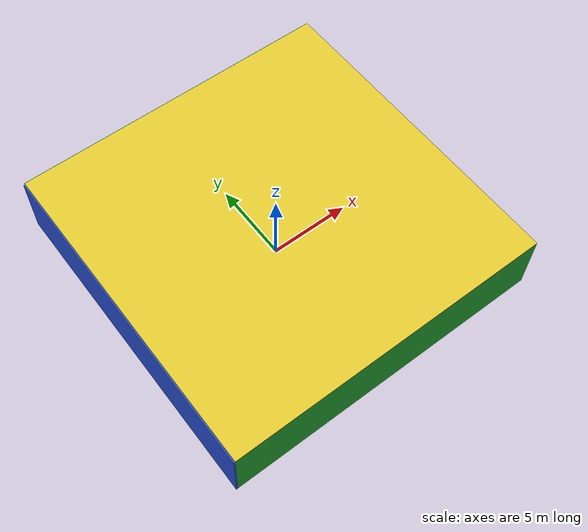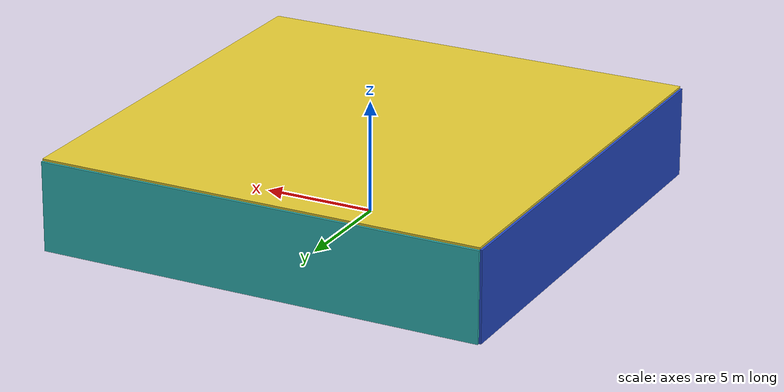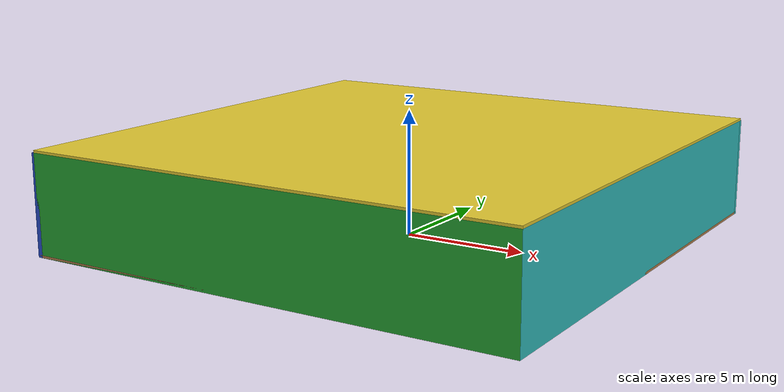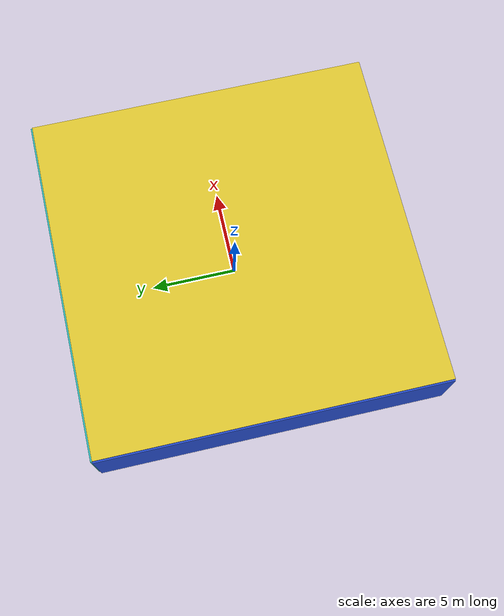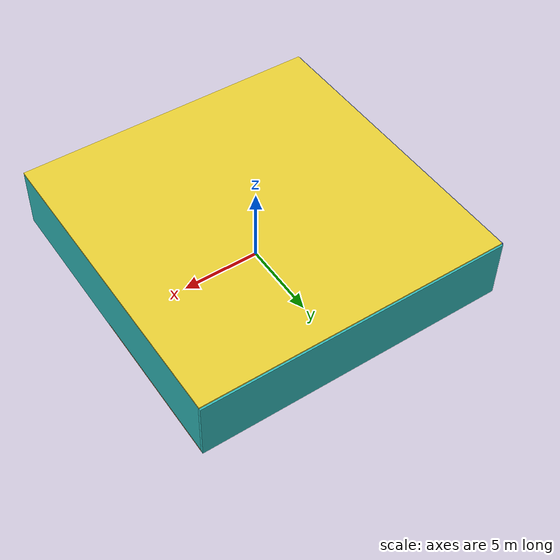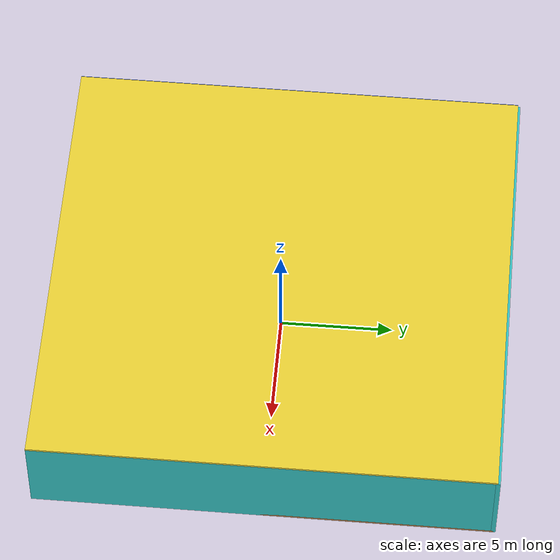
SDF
<sdf version="1.4">
 <world name="default">
  <physics type="ode">
   <max_step_size>0.001</max_step_size>
   <real_time_factor>1</real_time_factor>
   <real_time_update_rate>1000</real_time_update_rate>
   <gravity>0 0 -9.8</gravity>
  </physics>
  <scene><ambient>0.4 0.4 0.4 1</ambient><background>0.7 0.7 0.7 1</background><shadows>1</shadows></scene>
  <model name="Surrounding">
   <static>1</static>
   <link name="Ceiling">
    <collision name="Ceiling_Collision"><geometry><box><size>20 20 0.1</size></box></geometry></collision>
    <visual name="Ceiling_Visual">
     <geometry><box><size>20 20 0.1</size></box></geometry>
     <material>
      <script><uri>file://media/materials/scripts/gazebo.material</uri><name>Gazebo/ZincYellow</name></script>
     </material>
    </visual>
    <pose>0 0 4.05 0 0 0</pose>
   </link>
   <link name="Wall_South">
    <collision name="Wall_South_Collision">
     <geometry><box><size>20 0 4</size></box></geometry>
     <pose>0 0 2 0 -0 0</pose>
    </collision>
    <visual name="Wall_South_Visual">
     <pose>0 0 2 0 -0 0</pose>
     <geometry><box><size>20 0 4</size></box></geometry>
     <material>
      <script><uri>file://media/materials/scripts/gazebo.material</uri><name>Gazebo/GreenGlow</name></script>
     </material>
    </visual>
    <velocity_decay><linear>0</linear><angular>0</angular></velocity_decay>
    <pose>0 -10 0 0 -0 0</pose>
   </link>
   <link name="Wall_East">
    <collision name="Wall_21_Collision">
     <geometry><box><size>20 0 4</size></box></geometry>
     <pose>0 0 2 0 -0 0</pose>
    </collision>
    <visual name="Wall_21_Visual">
     <pose>0 0 2 0 -0 0</pose>
     <geometry><box><size>20 0 4</size></box></geometry>
     <material>
      <script><uri>file://media/materials/scripts/gazebo.material</uri><name>Gazebo/TurquoiseGlow</name></script>
     </material>
    </visual>
    <velocity_decay><linear>0</linear><angular>0</angular></velocity_decay>
    <pose>10 0 0 0 -0 1.5708</pose>
   </link>
   <link name="Wall_North">
    <collision name="Wall_22_Collision">
     <geometry><box><size>20 0.2 4</size></box></geometry>
     <pose>0 0 2 0 -0 0</pose>
    </collision>
    <visual name="Wall_22_Visual">
     <pose>0 0 2 0 -0 0</pose>
     <geometry><box><size>20 0.2 4</size></box></geometry>
     <material>
      <script><uri>file://media/materials/scripts/gazebo.material</uri><name>Gazebo/Turquoise</name></script>
     </material>
    </visual>
    <velocity_decay><linear>0</linear><angular>0</angular></velocity_decay>
    <pose>0 10 0 0 -0 0</pose>
   </link>
   <link name="Wall_West">
    <collision name="Wall_23_Collision">
     <geometry><box><size>20 0.2 4</size></box></geometry>
     <pose>0 0 2 0 -0 0</pose>
    </collision>
    <visual name="Wall_23_Visual">
     <pose>0 0 2 0 -0 0</pose>
     <geometry><box><size>20 0.2 4</size></box></geometry>
     <material>
      <script><uri>file://media/materials/scripts/gazebo.material</uri><name>Gazebo/BlueGlow</name></script>
     </material>
    </visual>
    <velocity_decay><linear>0</linear><angular>0</angular></velocity_decay>
    <pose>-10 0 0 0 0 -1.5708</pose>
   </link>
   <link name="Ground_link">
    <collision name="collision">
     <pose>0 0 .05 0 -0 0</pose>
     <geometry><box><size>20 20 0.1</size></box></geometry>
    </collision>
    <visual name="visual">
     <pose>0 0 .05 0 -0 0</pose>
     <geometry><box><size>20 20 0.1</size></box></geometry>
     <material>
      <script><uri>file://media/materials/scripts/gazebo.material</uri><name>Gazebo/WoodFloor</name></script>
     </material>
    </visual>
   </link>
   <static>1</static>
  </model>
  <spherical_coordinates>
   <surface_model>EARTH_WGS84</surface_model>
   <latitude_deg>0</latitude_deg>
   <longitude_deg>0</longitude_deg>
   <elevation>0</elevation>
   <heading_deg>0</heading_deg>
  </spherical_coordinates>
  <light name="lightball_0" type="diffuse">
   <diffuse>0.8 0.8 0.8 1</diffuse>
   <specular>0.2 0.2 0.2 1</specular>
   <attenuation>
    <range>100</range>
    <constant>0.7</constant>
    <linear>0.01</linear>
    <quadratic>0.001</quadratic>
   </attenuation>
   <direction>-0.5 0.1 -0.9</direction>
   <pose>-1.60664502653 8.07903677259 1.29037409118 0 0 0</pose>
  </light>
  <light name="lightball_1" type="diffuse">
   <diffuse>0.8 0.8 0.8 1</diffuse>
   <specular>0.2 0.2 0.2 1</specular>
   <attenuation>
    <range>100</range>
    <constant>0.7</constant>
    <linear>0.01</linear>
    <quadratic>0.001</quadratic>
   </attenuation>
   <direction>-0.5 0.1 -0.9</direction>
   <pose>4.74010976303 3.08601329856 0.575568174836 0 0 0</pose>
  </light>
  <light name="lightball_2" type="diffuse">
   <diffuse>0.8 0.8 0.8 1</diffuse>
   <specular>0.2 0.2 0.2 1</specular>
   <attenuation>
    <range>100</range>
    <constant>0.7</constant>
    <linear>0.01</linear>
    <quadratic>0.001</quadratic>
   </attenuation>
   <direction>-0.5 0.1 -0.9</direction>
   <pose>2.84338740787 1.63158028178 2.62934928795 0 0 0</pose>
  </light>
  <light name="lightball_3" type="diffuse">
   <diffuse>0.8 0.8 0.8 1</diffuse>
   <specular>0.2 0.2 0.2 1</specular>
   <attenuation>
    <range>100</range>
    <constant>0.7</constant>
    <linear>0.01</linear>
    <quadratic>0.001</quadratic>
   </attenuation>
   <direction>-0.5 0.1 -0.9</direction>
   <pose>5.19737158804 -9.16150720484 2.89632834993 0 0 0</pose>
  </light>
  <light name="lightball_4" type="diffuse">
   <diffuse>0.8 0.8 0.8 1</diffuse>
   <specular>0.2 0.2 0.2 1</specular>
   <attenuation>
    <range>100</range>
    <constant>0.7</constant>
    <linear>0.01</linear>
    <quadratic>0.001</quadratic>
   </attenuation>
   <direction>-0.5 0.1 -0.9</direction>
   <pose>-5.36626922106 3.08267186701 2.12977125942 0 0 0</pose>
  </light>
  <light name="lightball_5" type="diffuse">
   <diffuse>0.8 0.8 0.8 1</diffuse>
   <specular>0.2 0.2 0.2 1</specular>
   <attenuation>
    <range>100</range>
    <constant>0.7</constant>
    <linear>0.01</linear>
    <quadratic>0.001</quadratic>
   </attenuation>
   <direction>-0.5 0.1 -0.9</direction>
   <pose>5.44732761135 -3.1816097427 3.76892023535 0 0 0</pose>
  </light>
  <light name="lightball_6" type="diffuse">
   <diffuse>0.8 0.8 0.8 1</diffuse>
   <specular>0.2 0.2 0.2 1</specular>
   <attenuation>
    <range>100</range>
    <constant>0.7</constant>
    <linear>0.01</linear>
    <quadratic>0.001</quadratic>
   </attenuation>
   <direction>-0.5 0.1 -0.9</direction>
   <pose>3.83672809264 -6.47881467764 0.983623102139 0 0 0</pose>
  </light>
  <include><uri>model://table</uri><pose>-6.78685204457 -8.17779398022 0 0 0 1.20948433025</pose></include>
  <include><uri>model://cabinet</uri><pose>-8.0204758358 4.74102830764 0 0 0 0.349337687301</pose></include>
  <include><uri>model://cabinet</uri><pose>-4.29412778205 -3.83185590751 0 0 0 0.043545769152</pose></include>
  <include>
   <uri>model://robocup_3Dsim_goal</uri>
   <pose>-3.86417844627 1.37173197158 0 0 0 0.810311855852</pose>
  </include>
  <include>
   <uri>model://construction_cone</uri>
   <pose>5.15436727195 5.0444796177 0 0 0 2.9511906186</pose>
  </include>
  <include><uri>model://cabinet</uri><pose>4.25348555331 8.29839856753 0 0 0 2.44486863207</pose></include>
  <include><uri>model://table</uri><pose>8.06713497678 -7.34669429702 0 0 0 2.56698979707</pose></include>
 </world>
</sdf>

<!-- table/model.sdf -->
<sdf version="1.5">
  <model name="table">
    <static>true</static>
    <link name="link">
      <collision name="surface">
        <pose>0 0 1.0 0 0 0</pose>
        <geometry>
          <box>
            <size>1.5 0.8 0.03</size>
          </box>
        </geometry>
        <surface>
          <friction>
            <ode>
              <mu>0.6</mu>
              <mu2>0.6</mu2>
            </ode>
          </friction>
        </surface>
      </collision>
      <visual name="visual1">
        <pose>0 0 1.0 0 0 0</pose>
        <geometry>
          <box>
            <size>1.5 0.8 0.03</size>
          </box>
        </geometry>
        <material>
          <script>
            <uri>model://media/materials/scripts/gazebo.material</uri>
            <name>Gazebo/Wood</name>
          </script>
        </material>
      </visual>
      <collision name="front_left_leg">
        <pose>0.68 0.38 0.5 0 0 0</pose>
        <geometry>
          <cylinder>
            <radius>0.02</radius>
            <length>1.0</length>
          </cylinder>
        </geometry>
      </collision>
      <visual name="front_left_leg">
        <pose>0.68 0.38 0.5 0 0 0</pose>
        <geometry>
          <cylinder>
            <radius>0.02</radius>
            <length>1.0</length>
          </cylinder>
        </geometry>
        <material>
          <script>
            <uri>model://media/materials/scripts/gazebo.material</uri>
            <name>Gazebo/Grey</name>
          </script>
        </material>
      </visual>
      <collision name="front_right_leg">
        <pose>0.68 -0.38 0.5 0 0 0</pose>
        <geometry>
          <cylinder>
            <radius>0.02</radius>
            <length>1.0</length>
          </cylinder>
        </geometry>
      </collision>
      <visual name="front_right_leg">
        <pose>0.68 -0.38 0.5 0 0 0</pose>
        <geometry>
          <cylinder>
            <radius>0.02</radius>
            <length>1.0</length>
          </cylinder>
        </geometry>
        <material>
          <script>
            <uri>model://media/materials/scripts/gazebo.material</uri>
            <name>Gazebo/Grey</name>
          </script>
        </material>
      </visual>
      <collision name="back_right_leg">
        <pose>-0.68 -0.38 0.5 0 0 0</pose>
        <geometry>
          <cylinder>
            <radius>0.02</radius>
            <length>1.0</length>
          </cylinder>
        </geometry>
      </collision>
      <visual name="back_right_leg">
        <pose>-0.68 -0.38 0.5 0 0 0</pose>
        <geometry>
          <cylinder>
            <radius>0.02</radius>
            <length>1.0</length>
          </cylinder>
        </geometry>
        <material>
          <script>
            <uri>model://media/materials/scripts/gazebo.material</uri>
            <name>Gazebo/Grey</name>
          </script>
        </material>
      </visual>
      <collision name="back_left_leg">
        <pose>-0.68 0.38 0.5 0 0 0</pose>
        <geometry>
          <cylinder>
            <radius>0.02</radius>
            <length>1.0</length>
          </cylinder>
        </geometry>
      </collision>
      <visual name="back_left_leg">
        <pose>-0.68 0.38 0.5 0 0 0</pose>
        <geometry>
          <cylinder>
            <radius>0.02</radius>
            <length>1.0</length>
          </cylinder>
        </geometry>
        <material>
          <script>
            <uri>model://media/materials/scripts/gazebo.material</uri>
            <name>Gazebo/Grey</name>
          </script>
        </material>
      </visual>
    </link>
  </model>
</sdf>

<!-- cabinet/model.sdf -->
<sdf version="1.5">
  <model name="cabinet">
    <static>true</static>
    <link name="cabinet_bottom_plate">
      <inertial>
        <pose>0 0 -1 0 0 0</pose>
        <inertia>
          <ixx>2.050000</ixx>
          <ixy>0</ixy>
          <ixz>0</ixz>
          <iyy>2.050000</iyy>
          <iyz>0</iyz>
          <izz>2.050000</izz>
        </inertia>
        <mass>25.000000</mass>
      </inertial>
      <collision name="cabinet_bottom_plate_geom">
        <pose>0 0 0.010000 0 0 0</pose>
        <geometry>
          <box>
            <size>0.450000 0.450000 0.020000</size>
          </box>
        </geometry>
      </collision>
      <visual name="cabinet_bottom_plate_geom_visual">
        <pose>0 0 0.010000 0 0 0</pose>
        <geometry>
          <box>
            <size>0.450000 0.450000 0.020000</size>
          </box>
        </geometry>
        <material>
          <script>
            <uri>model://media/materials/scripts/gazebo.material</uri>
            <name>Gazebo/Wood</name>
          </script>
        </material>
      </visual>
      <collision name="cabinet_bottom_plate_geom_cabinet_back_plate">
        <pose>0.235000 0 0.510000 0 0 0</pose>
        <geometry>
          <box>
            <size>0.020000 0.450000 1.020000</size>
          </box>
        </geometry>
      </collision>
      <visual name="cabinet_bottom_plate_geom_cabinet_back_plate_visual">
        <pose>0.235000 0 0.510000 0 0 0</pose>
        <geometry>
          <box>
            <size>0.020000 0.450000 1.020000</size>
          </box>
        </geometry>
        <material>
          <script>
            <uri>model://media/materials/scripts/gazebo.material</uri>
            <name>Gazebo/Wood</name>
          </script>
        </material>
      </visual>
      <collision name="cabinet_bottom_plate_geom_cabinet_left_plate">
        <pose>0 0.235000 0.510000 0 0 0</pose>
        <geometry>
          <box>
            <size>0.450000 0.020000 1.020000</size>
          </box>
        </geometry>
      </collision>
      <visual name="cabinet_bottom_plate_geom_cabinet_left_plate_visual">
        <pose>0 0.235000 0.510000 0 0 0</pose>
        <geometry>
          <box>
            <size>0.450000 0.020000 1.020000</size>
          </box>
        </geometry>
        <material>
          <script>
            <uri>model://media/materials/scripts/gazebo.material</uri>
            <name>Gazebo/Wood</name>
          </script>
        </material>
      </visual>
      <collision name="cabinet_bottom_plate_geom_cabinet_middle_plate">
        <pose>0 0 0.510000 0 0 0</pose>
        <geometry>
          <box>
            <size>0.450000 0.450000 0.020000</size>
          </box>
        </geometry>
      </collision>
      <visual name="cabinet_bottom_plate_geom_cabinet_middle_plate_visual">
        <pose>0 0 0.510000 0 0 0</pose>
        <geometry>
          <box>
            <size>0.450000 0.450000 0.020000</size>
          </box>
        </geometry>
        <material>
          <script>
            <uri>model://media/materials/scripts/gazebo.material</uri>
            <name>Gazebo/Wood</name>
          </script>
        </material>
      </visual>
      <collision name="cabinet_bottom_plate_geom_cabinet_right_plate">
        <pose>0 -0.235000 0.510000 0 0 0</pose>
        <geometry>
          <box>
            <size>0.450000 0.020000 1.020000</size>
          </box>
        </geometry>
      </collision>
      <visual name="cabinet_bottom_plate_geom_cabinet_right_plate_visual">
        <pose>0 -0.235000 0.510000 0 0 0</pose>
        <geometry>
          <box>
            <size>0.450000 0.020000 1.020000</size>
          </box>
        </geometry>
        <material>
          <script>
            <uri>model://media/materials/scripts/gazebo.material</uri>
            <name>Gazebo/Wood</name>
          </script>
        </material>
      </visual>
      <collision name="cabinet_bottom_plate_geom_cabinet_top_plate">
        <pose>0 0 1.010000 0 0 0</pose>
        <geometry>
          <box>
            <size>0.450000 0.450000 0.020000</size>
          </box>
        </geometry>
      </collision>
      <visual name="cabinet_bottom_plate_geom_cabinet_top_plate_visual">
        <pose>0 0 1.010000 0 0 0</pose>
        <geometry>
          <box>
            <size>0.450000 0.450000 0.020000</size>
          </box>
        </geometry>
        <material>
          <script>
            <uri>model://media/materials/scripts/gazebo.material</uri>
            <name>Gazebo/Wood</name>
          </script>
        </material>
      </visual>
    </link>
  </model>
</sdf>

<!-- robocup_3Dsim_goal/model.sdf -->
<sdf version="1.5">
  <model name="robocup_3d_goal">
    <static>true</static>
    <link name="left_post">
      <pose>0 1.05 0.45 0 0 0</pose>
      <collision name="collision">
        <geometry>
          <cylinder>
            <radius>0.05</radius>
            <length>0.9</length>
          </cylinder>
        </geometry>
      </collision>
      <visual name="visual">
        <geometry>
          <cylinder>
            <radius>0.05</radius>
            <length>0.9</length>
          </cylinder>
        </geometry>
        <material>
          <script>
            <uri>file://media/materials/scripts/gazebo.material</uri>
            <name>Gazebo/ZincYellow</name>
          </script>
        </material>
      </visual>
    </link>
    <link name="left_support_horiz_lower">
      <pose>0.30 1.05 0.01 0 0 0</pose>
      <collision name="collision">
        <geometry>
          <box>
            <size>0.50 0.02 0.02</size>
          </box>
        </geometry>
      </collision>
      <visual name="visual">
        <geometry>
          <box>
            <size>0.50 0.02 0.02</size>
          </box>
        </geometry>
        <material>
          <script>
            <uri>file://media/materials/scripts/gazebo.material</uri>
            <name>Gazebo/White</name>
          </script>
        </material>
      </visual>
    </link>
    <link name="left_support_horiz_upper">
      <pose>0.30 1.05 0.79 0 0 0</pose>
      <collision name="collision">
        <geometry>
          <box>
            <size>0.50 0.02 0.02</size>
          </box>
        </geometry>
      </collision>
      <visual name="visual">
        <geometry>
          <box>
            <size>0.50 0.02 0.02</size>
          </box>
        </geometry>
        <material>
          <script>
            <uri>file://media/materials/scripts/gazebo.material</uri>
            <name>Gazebo/White</name>
          </script>
        </material>
      </visual>
    </link>
    <link name="left_support_vertical">
      <pose>0.56 1.05 0.4 0 1.5708 0</pose>
      <collision name="collision">
        <geometry>
          <box>
            <size>0.80 0.02 0.02</size>
          </box>
        </geometry>
      </collision>
      <visual name="visual">
        <geometry>
          <box>
            <size>0.80 0.02 0.02</size>
          </box>
        </geometry>
        <material>
          <script>
            <uri>file://media/materials/scripts/gazebo.material</uri>
            <name>Gazebo/White</name>
          </script>
        </material>
      </visual>
    </link>
    <link name="right_support_horiz_lower">
      <pose>0.30 -1.05 0.01 0 0 0</pose>
      <collision name="collision">
        <geometry>
          <box>
            <size>0.50 0.02 0.02</size>
          </box>
        </geometry>
      </collision>
      <visual name="visual">
        <geometry>
          <box>
            <size>0.50 0.02 0.02</size>
          </box>
        </geometry>
        <material>
          <script>
            <uri>file://media/materials/scripts/gazebo.material</uri>
            <name>Gazebo/White</name>
          </script>
        </material>
      </visual>
    </link>
    <link name="right_support_horiz_upper">
      <pose>0.30 -1.05 0.79 0 0 0</pose>
      <collision name="collision">
        <geometry>
          <box>
            <size>0.50 0.02 0.02</size>
          </box>
        </geometry>
      </collision>
      <visual name="visual">
        <geometry>
          <box>
            <size>0.50 0.02 0.02</size>
          </box>
        </geometry>
        <material>
          <script>
            <uri>file://media/materials/scripts/gazebo.material</uri>
            <name>Gazebo/White</name>
          </script>
        </material>
      </visual>
    </link>
    <link name="right_support_vertical">
      <pose>0.56 -1.05 0.4 0 1.5708 0</pose>
      <collision name="collision">
        <geometry>
          <box>
            <size>0.80 0.02 0.02</size>
          </box>
        </geometry>
      </collision>
      <visual name="visual">
        <geometry>
          <box>
            <size>0.80 0.02 0.02</size>
          </box>
        </geometry>
        <material>
          <script>
            <uri>file://media/materials/scripts/gazebo.material</uri>
            <name>Gazebo/White</name>
          </script>
        </material>
      </visual>
    </link>
    <link name="center_support_horiz_lower">
      <pose>0.56 0 0.01 0 1.5708 0</pose>
      <collision name="collision">
        <geometry>
          <box>
            <size>0.02 2.08 0.02</size>
          </box>
        </geometry>
      </collision>
      <visual name="visual">
        <geometry>
          <box>
            <size>0.02 2.08 0.02</size>
          </box>
        </geometry>
        <material>
          <script>
            <uri>file://media/materials/scripts/gazebo.material</uri>
            <name>Gazebo/White</name>
          </script>
        </material>
      </visual>
    </link>
    <link name="center_support_horiz_upper">
      <pose>0.56 0 0.79 0 1.5708 0</pose>
      <collision name="collision">
        <geometry>
          <box>
            <size>0.02 2.08 0.02</size>
          </box>
        </geometry>
      </collision>
      <visual name="visual">
        <geometry>
          <box>
            <size>0.02 2.08 0.02</size>
          </box>
        </geometry>
        <material>
          <script>
            <uri>file://media/materials/scripts/gazebo.material</uri>
            <name>Gazebo/White</name>
          </script>
        </material>
      </visual>
    </link>
    <link name="right_post">
      <pose>0 -1.05 0.45 0 0 0</pose>
      <collision name="collision">
        <geometry>
          <cylinder>
            <radius>0.05</radius>
            <length>0.9</length>
          </cylinder>
        </geometry>
      </collision>
      <visual name="visual">
        <geometry>
          <cylinder>
            <radius>0.05</radius>
            <length>0.9</length>
          </cylinder>
        </geometry>
        <material>
          <script>
            <uri>file://media/materials/scripts/gazebo.material</uri>
            <name>Gazebo/ZincYellow</name>
          </script>
        </material>
      </visual>
    </link>
    <link name="crossbar">
      <pose>0 0 0.85 1.57 1.57 0</pose>
      <collision name="collision">
        <geometry>
          <cylinder>
            <radius>0.05</radius>
            <length>2.0</length>
          </cylinder>
        </geometry>
      </collision>
      <visual name="visual">
        <geometry>
          <cylinder>
            <radius>0.05</radius>
            <length>2.0</length>
          </cylinder>
        </geometry>
        <material>
          <script>
            <uri>file://media/materials/scripts/gazebo.material</uri>
            <name>Gazebo/ZincYellow</name>
          </script>
        </material>
      </visual>
    </link>
    <link name="center_net">
      <pose>0.56 0 0.40 0 0 0</pose>
      <collision name="collision">
        <geometry>
          <box>
            <size>0.01 2.1 0.80</size>
          </box>
        </geometry>
      </collision>
      <visual name="visual">
        <geometry>
          <box>
            <size>0.01 2.1 0.80</size>
          </box>
        </geometry>
        <material>
          <script>
            <uri>model://../model_source/models/robocup09_spl_field/materials/scripts/</uri>
            <uri>model://../model_source/models/robocup09_spl_field/materials/textures/</uri>
            <name>RoboCup/Net</name>
          </script>
        </material>
      </visual>
    </link>
    <link name="left_net">
      <pose>0.30 1.05 0.40 0 0 0</pose>
      <collision name="collision">
        <geometry>
          <box>
            <size>0.50 0.01 0.76</size>
          </box>
        </geometry>
      </collision>
      <visual name="visual">
        <geometry>
          <box>
            <size>0.50 0.01 0.76</size>
          </box>
        </geometry>
        <material>
          <script>
            <uri>model://../model_source/models/robocup09_spl_field/materials/scripts/</uri>
            <uri>model://../model_source/models/robocup09_spl_field/materials/textures/</uri>
            <name>RoboCup/Net</name>
          </script>
        </material>
      </visual>
    </link>
    <link name="right_net">
      <pose>0.30 -1.05 0.40 0 0 0</pose>
      <collision name="collision">
        <geometry>
          <box>
            <size>0.50 0.01 0.76</size>
          </box>
        </geometry>
      </collision>
      <visual name="visual">
        <geometry>
          <box>
            <size>0.50 0.01 0.76</size>
          </box>
        </geometry>
        <material>
          <script>
            <uri>model://../model_source/models/robocup09_spl_field/materials/scripts/</uri>
            <uri>model://../model_source/models/robocup09_spl_field/materials/textures/</uri>
            <name>RoboCup/Net</name>
          </script>
        </material>
      </visual>
    </link>
  </model>
</sdf>

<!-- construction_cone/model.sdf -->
<sdf version="1.5">
  <model name="Construction Cone">
    <link name="link">
      <collision name="collision">
        <geometry>
          <mesh>
            <scale>10 10 10</scale>
            <uri>file://isr-testbed/construction_cone/meshes/construction_cone.dae</uri>
          </mesh>
        </geometry>
      </collision>
      <visual name="visual">
        <geometry>
          <mesh>
            <scale>10 10 10</scale>
            <uri>file://isr-testbed/construction_cone/meshes/construction_cone.dae</uri>
          </mesh>
        </geometry>
      </visual>
    </link>
  </model>
</sdf>
